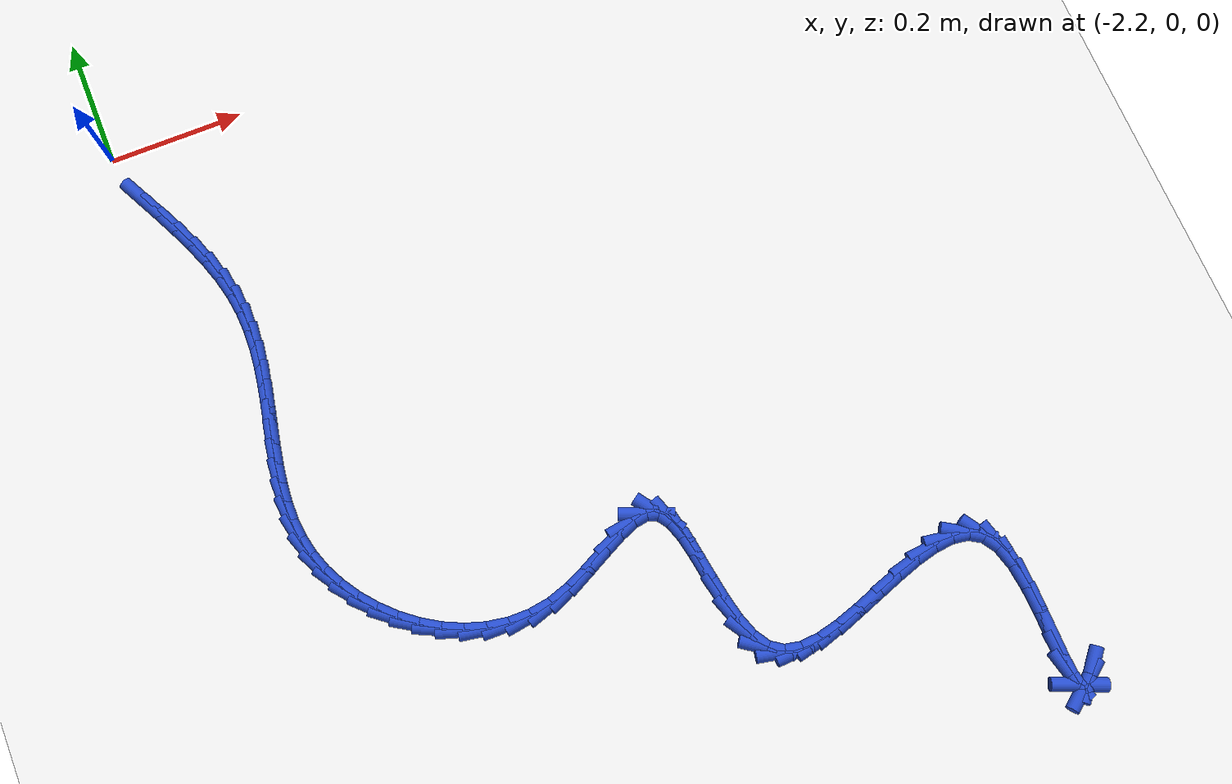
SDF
<sdf version="1.6">
 <world name="default">
  <model name="ground_plane">
   <static>1</static>
   <link name="link">
    <collision name="collision">
     <geometry><plane><normal>0 0 1</normal><size>100 100</size></plane></geometry>
     <surface><friction><ode><mu>100</mu><mu2>50</mu2></ode></friction></surface>
    </collision>
    <visual name="visual">
     <cast_shadows>0</cast_shadows>
     <geometry><plane><normal>0 0 1</normal><size>100 100</size></plane></geometry>
     <material>
      <script><uri>file://media/materials/scripts/gazebo.material</uri><name>Gazebo/WhiteGlow</name></script>
     </material>
    </visual>
   </link>
  </model>
  <model name="line">
   <link name="link_138">
    <pose>-2.1750093930270067 -0.08024967819021081 0.01 0 1.57 -1.1079910578555419</pose>
    <collision name="collision">
     <geometry><cylinder><radius>0.01</radius><length>0.08</length></cylinder></geometry>
    </collision>
    <visual name="visual">
     <material>
      <script><name>Gazebo/Blue</name><uri>file://media/materials/scripts/gazebo.material</uri></script>
     </material>
     <geometry><cylinder><radius>0.01</radius><length>0.08</length></cylinder></geometry>
    </visual>
   </link>
   <link name="link_139">
    <pose>-2.159582826003077 -0.11116789397244181 0.01 0 1.57 -1.1234587748258882</pose>
    <collision name="collision">
     <geometry><cylinder><radius>0.01</radius><length>0.08</length></cylinder></geometry>
    </collision>
    <visual name="visual">
     <material>
      <script><name>Gazebo/Blue</name><uri>file://media/materials/scripts/gazebo.material</uri></script>
     </material>
     <geometry><cylinder><radius>0.01</radius><length>0.08</length></cylinder></geometry>
    </visual>
   </link>
   <link name="link_140">
    <pose>-2.1446007600005483 -0.14239513241327098 0.01 0 1.57 -1.1523136285006175</pose>
    <collision name="collision">
     <geometry><cylinder><radius>0.01</radius><length>0.08</length></cylinder></geometry>
    </collision>
    <visual name="visual">
     <material>
      <script><name>Gazebo/Blue</name><uri>file://media/materials/scripts/gazebo.material</uri></script>
     </material>
     <geometry><cylinder><radius>0.01</radius><length>0.08</length></cylinder></geometry>
    </visual>
   </link>
   <link name="link_141">
    <pose>-2.130638521712843 -0.17378831137011216 0.01 0 1.57 -1.1957716141184123</pose>
    <collision name="collision">
     <geometry><cylinder><radius>0.01</radius><length>0.08</length></cylinder></geometry>
    </collision>
    <visual name="visual">
     <material>
      <script><name>Gazebo/Blue</name><uri>file://media/materials/scripts/gazebo.material</uri></script>
     </material>
     <geometry><cylinder><radius>0.01</radius><length>0.08</length></cylinder></geometry>
    </visual>
   </link>
   <link name="link_142">
    <pose>-2.118271437833383 -0.20520434870038068 0.01 0 1.57 -1.2558286987422518</pose>
    <collision name="collision">
     <geometry><cylinder><radius>0.01</radius><length>0.08</length></cylinder></geometry>
    </collision>
    <visual name="visual">
     <material>
      <script><name>Gazebo/Blue</name><uri>file://media/materials/scripts/gazebo.material</uri></script>
     </material>
     <geometry><cylinder><radius>0.01</radius><length>0.08</length></cylinder></geometry>
    </visual>
   </link>
   <link name="link_143">
    <pose>-2.1080748350555902 -0.2365001622614914 0.01 0 1.57 -1.3351601491467688</pose>
    <collision name="collision">
     <geometry><cylinder><radius>0.01</radius><length>0.08</length></cylinder></geometry>
    </collision>
    <visual name="visual">
     <material>
      <script><name>Gazebo/Blue</name><uri>file://media/materials/scripts/gazebo.material</uri></script>
     </material>
     <geometry><cylinder><radius>0.01</radius><length>0.08</length></cylinder></geometry>
    </visual>
   </link>
   <link name="link_144">
    <pose>-2.100624040072885 -0.267532669910859 0.01 0 1.57 -1.4334561802345067</pose>
    <collision name="collision">
     <geometry><cylinder><radius>0.01</radius><length>0.08</length></cylinder></geometry>
    </collision>
    <visual name="visual">
     <material>
      <script><name>Gazebo/Blue</name><uri>file://media/materials/scripts/gazebo.material</uri></script>
     </material>
     <geometry><cylinder><radius>0.01</radius><length>0.08</length></cylinder></geometry>
    </visual>
   </link>
   <link name="link_145">
    <pose>-2.0963889884723024 -0.29817476936111775 0.01 0 1.57 -1.5294777905653234</pose>
    <collision name="collision">
     <geometry><cylinder><radius>0.01</radius><length>0.08</length></cylinder></geometry>
    </collision>
    <visual name="visual">
     <material>
      <script><name>Gazebo/Blue</name><uri>file://media/materials/scripts/gazebo.material</uri></script>
     </material>
     <geometry><cylinder><radius>0.01</radius><length>0.08</length></cylinder></geometry>
    </visual>
   </link>
   <link name="link_146">
    <pose>-2.0951391851154537 -0.32840556065987525 0.01 0 1.57 1.5299606550445466</pose>
    <collision name="collision">
     <geometry><cylinder><radius>0.01</radius><length>0.08</length></cylinder></geometry>
    </collision>
    <visual name="visual">
     <material>
      <script><name>Gazebo/Blue</name><uri>file://media/materials/scripts/gazebo.material</uri></script>
     </material>
     <geometry><cylinder><radius>0.01</radius><length>0.08</length></cylinder></geometry>
    </visual>
   </link>
   <link name="link_147">
    <pose>-2.0963584768005474 -0.35824745656538065 0.01 0 1.57 1.4636146265108017</pose>
    <collision name="collision">
     <geometry><cylinder><radius>0.01</radius><length>0.08</length></cylinder></geometry>
    </collision>
    <visual name="visual">
     <material>
      <script><name>Gazebo/Blue</name><uri>file://media/materials/scripts/gazebo.material</uri></script>
     </material>
     <geometry><cylinder><radius>0.01</radius><length>0.08</length></cylinder></geometry>
    </visual>
   </link>
   <link name="link_148">
    <pose>-2.099529868926028 -0.3877229974125559 0.01 0 1.57 1.4139683297560868</pose>
    <collision name="collision">
     <geometry><cylinder><radius>0.01</radius><length>0.08</length></cylinder></geometry>
    </collision>
    <visual name="visual">
     <material>
      <script><name>Gazebo/Blue</name><uri>file://media/materials/scripts/gazebo.material</uri></script>
     </material>
     <geometry><cylinder><radius>0.01</radius><length>0.08</length></cylinder></geometry>
    </visual>
   </link>
   <link name="link_149">
    <pose>-2.1041363668903426 -0.41685472353632236 0.01 0 1.57 1.3813390317461878</pose>
    <collision name="collision">
     <geometry><cylinder><radius>0.01</radius><length>0.08</length></cylinder></geometry>
    </collision>
    <visual name="visual">
     <material>
      <script><name>Gazebo/Blue</name><uri>file://media/materials/scripts/gazebo.material</uri></script>
     </material>
     <geometry><cylinder><radius>0.01</radius><length>0.08</length></cylinder></geometry>
    </visual>
   </link>
   <link name="link_150">
    <pose>-2.109660976091934 -0.4456651752716009 0.01 0 1.57 1.3658788246735152</pose>
    <collision name="collision">
     <geometry><cylinder><radius>0.01</radius><length>0.08</length></cylinder></geometry>
    </collision>
    <visual name="visual">
     <material>
      <script><name>Gazebo/Blue</name><uri>file://media/materials/scripts/gazebo.material</uri></script>
     </material>
     <geometry><cylinder><radius>0.01</radius><length>0.08</length></cylinder></geometry>
    </visual>
   </link>
   <link name="link_151">
    <pose>-2.11558670192925 -0.47417689295331267 0.01 0 1.57 1.367864872662749</pose>
    <collision name="collision">
     <geometry><cylinder><radius>0.01</radius><length>0.08</length></cylinder></geometry>
    </collision>
    <visual name="visual">
     <material>
      <script><name>Gazebo/Blue</name><uri>file://media/materials/scripts/gazebo.material</uri></script>
     </material>
     <geometry><cylinder><radius>0.01</radius><length>0.08</length></cylinder></geometry>
    </visual>
   </link>
   <link name="link_152">
    <pose>-2.1213965498007346 -0.5024124169163791 0.01 0 1.57 1.3878531835266719</pose>
    <collision name="collision">
     <geometry><cylinder><radius>0.01</radius><length>0.08</length></cylinder></geometry>
    </collision>
    <visual name="visual">
     <material>
      <script><name>Gazebo/Blue</name><uri>file://media/materials/scripts/gazebo.material</uri></script>
     </material>
     <geometry><cylinder><radius>0.01</radius><length>0.08</length></cylinder></geometry>
    </visual>
   </link>
   <link name="link_153">
    <pose>-2.126573525104833 -0.5303942874957208 0.01 0 1.57 1.4266852649250839</pose>
    <collision name="collision">
     <geometry><cylinder><radius>0.01</radius><length>0.08</length></cylinder></geometry>
    </collision>
    <visual name="visual">
     <material>
      <script><name>Gazebo/Blue</name><uri>file://media/materials/scripts/gazebo.material</uri></script>
     </material>
     <geometry><cylinder><radius>0.01</radius><length>0.08</length></cylinder></geometry>
    </visual>
   </link>
   <link name="link_154">
    <pose>-2.1306006332399914 -0.5581450450262595 0.01 0 1.57 1.4853094992653528</pose>
    <collision name="collision">
     <geometry><cylinder><radius>0.01</radius><length>0.08</length></cylinder></geometry>
    </collision>
    <visual name="visual">
     <material>
      <script><name>Gazebo/Blue</name><uri>file://media/materials/scripts/gazebo.material</uri></script>
     </material>
     <geometry><cylinder><radius>0.01</radius><length>0.08</length></cylinder></geometry>
    </visual>
   </link>
   <link name="link_155">
    <pose>-2.1329608796046546 -0.5856872298429165 0.01 0 1.57 1.5643485067451677</pose>
    <collision name="collision">
     <geometry><cylinder><radius>0.01</radius><length>0.08</length></cylinder></geometry>
    </collision>
    <visual name="visual">
     <material>
      <script><name>Gazebo/Blue</name><uri>file://media/materials/scripts/gazebo.material</uri></script>
     </material>
     <geometry><cylinder><radius>0.01</radius><length>0.08</length></cylinder></geometry>
    </visual>
   </link>
   <link name="link_156">
    <pose>-2.1331372695972677 -0.6130433822806118 0.01 0 1.57 -1.4782255439006866</pose>
    <collision name="collision">
     <geometry><cylinder><radius>0.01</radius><length>0.08</length></cylinder></geometry>
    </collision>
    <visual name="visual">
     <material>
      <script><name>Gazebo/Blue</name><uri>file://media/materials/scripts/gazebo.material</uri></script>
     </material>
     <geometry><cylinder><radius>0.01</radius><length>0.08</length></cylinder></geometry>
    </visual>
   </link>
   <link name="link_157">
    <pose>-2.1306128086162763 -0.6402360426742668 0.01 0 1.57 -1.3616295795121587</pose>
    <collision name="collision">
     <geometry><cylinder><radius>0.01</radius><length>0.08</length></cylinder></geometry>
    </collision>
    <visual name="visual">
     <material>
      <script><name>Gazebo/Blue</name><uri>file://media/materials/scripts/gazebo.material</uri></script>
     </material>
     <geometry><cylinder><radius>0.01</radius><length>0.08</length></cylinder></geometry>
    </visual>
   </link>
   <link name="link_158">
    <pose>-2.124870502060126 -0.667287751358803 0.01 0 1.57 -1.2336092354714616</pose>
    <collision name="collision">
     <geometry><cylinder><radius>0.01</radius><length>0.08</length></cylinder></geometry>
    </collision>
    <visual name="visual">
     <material>
      <script><name>Gazebo/Blue</name><uri>file://media/materials/scripts/gazebo.material</uri></script>
     </material>
     <geometry><cylinder><radius>0.01</radius><length>0.08</length></cylinder></geometry>
    </visual>
   </link>
   <link name="link_159">
    <pose>-2.1154377173123096 -0.6941943513518177 0.01 0 1.57 -1.1108855004633407</pose>
    <collision name="collision">
     <geometry><cylinder><radius>0.01</radius><length>0.08</length></cylinder></geometry>
    </collision>
    <visual name="visual">
     <material>
      <script><name>Gazebo/Blue</name><uri>file://media/materials/scripts/gazebo.material</uri></script>
     </material>
     <geometry><cylinder><radius>0.01</radius><length>0.08</length></cylinder></geometry>
    </visual>
   </link>
   <link name="link_160">
    <pose>-2.102329038608992 -0.7206584755517632 0.01 0 1.57 -0.9981245548011611</pose>
    <collision name="collision">
     <geometry><cylinder><radius>0.01</radius><length>0.08</length></cylinder></geometry>
    </collision>
    <visual name="visual">
     <material>
      <script><name>Gazebo/Blue</name><uri>file://media/materials/scripts/gazebo.material</uri></script>
     </material>
     <geometry><cylinder><radius>0.01</radius><length>0.08</length></cylinder></geometry>
    </visual>
   </link>
   <link name="link_161">
    <pose>-2.085860363328247 -0.7462014247423372 0.01 0 1.57 -0.8911242993949146</pose>
    <collision name="collision">
     <geometry><cylinder><radius>0.01</radius><length>0.08</length></cylinder></geometry>
    </collision>
    <visual name="visual">
     <material>
      <script><name>Gazebo/Blue</name><uri>file://media/materials/scripts/gazebo.material</uri></script>
     </material>
     <geometry><cylinder><radius>0.01</radius><length>0.08</length></cylinder></geometry>
    </visual>
   </link>
   <link name="link_162">
    <pose>-2.066352056885059 -0.7703418108149549 0.01 0 1.57 -0.786046995490271</pose>
    <collision name="collision">
     <geometry><cylinder><radius>0.01</radius><length>0.08</length></cylinder></geometry>
    </collision>
    <visual name="visual">
     <material>
      <script><name>Gazebo/Blue</name><uri>file://media/materials/scripts/gazebo.material</uri></script>
     </material>
     <geometry><cylinder><radius>0.01</radius><length>0.08</length></cylinder></geometry>
    </visual>
   </link>
   <link name="link_163">
    <pose>-2.044124484694415 -0.7925982456610321 0.01 0 1.57 -0.6794256771318007</pose>
    <collision name="collision">
     <geometry><cylinder><radius>0.01</radius><length>0.08</length></cylinder></geometry>
    </collision>
    <visual name="visual">
     <material>
      <script><name>Gazebo/Blue</name><uri>file://media/materials/scripts/gazebo.material</uri></script>
     </material>
     <geometry><cylinder><radius>0.01</radius><length>0.08</length></cylinder></geometry>
    </visual>
   </link>
   <link name="link_164">
    <pose>-2.0194980121712973 -0.8124893411719837 0.01 0 1.57 -0.5680679788412566</pose>
    <collision name="collision">
     <geometry><cylinder><radius>0.01</radius><length>0.08</length></cylinder></geometry>
    </collision>
    <visual name="visual">
     <material>
      <script><name>Gazebo/Blue</name><uri>file://media/materials/scripts/gazebo.material</uri></script>
     </material>
     <geometry><cylinder><radius>0.01</radius><length>0.08</length></cylinder></geometry>
    </visual>
   </link>
   <link name="link_165">
    <pose>-1.9927930047306939 -0.8295337092392242 0.01 0 1.57 -0.44905869668295056</pose>
    <collision name="collision">
     <geometry><cylinder><radius>0.01</radius><length>0.08</length></cylinder></geometry>
    </collision>
    <visual name="visual">
     <material>
      <script><name>Gazebo/Blue</name><uri>file://media/materials/scripts/gazebo.material</uri></script>
     </material>
     <geometry><cylinder><radius>0.01</radius><length>0.08</length></cylinder></geometry>
    </visual>
   </link>
   <link name="link_166">
    <pose>-1.9643298277875882 -0.8432499617541691 0.01 0 1.57 -0.3199361298505757</pose>
    <collision name="collision">
     <geometry><cylinder><radius>0.01</radius><length>0.08</length></cylinder></geometry>
    </collision>
    <visual name="visual">
     <material>
      <script><name>Gazebo/Blue</name><uri>file://media/materials/scripts/gazebo.material</uri></script>
     </material>
     <geometry><cylinder><radius>0.01</radius><length>0.08</length></cylinder></geometry>
    </visual>
   </link>
   <link name="link_167">
    <pose>-1.934428846756967 -0.8531567106082338 0.01 0 1.57 -0.1791089315021569</pose>
    <collision name="collision">
     <geometry><cylinder><radius>0.01</radius><length>0.08</length></cylinder></geometry>
    </collision>
    <visual name="visual">
     <material>
      <script><name>Gazebo/Blue</name><uri>file://media/materials/scripts/gazebo.material</uri></script>
     </material>
     <geometry><cylinder><radius>0.01</radius><length>0.08</length></cylinder></geometry>
    </visual>
   </link>
   <link name="link_168">
    <pose>-1.9034104270538146 -0.8587725676928339 0.01 0 1.57 -0.026508456270802984</pose>
    <collision name="collision">
     <geometry><cylinder><radius>0.01</radius><length>0.08</length></cylinder></geometry>
    </collision>
    <visual name="visual">
     <material>
      <script><name>Gazebo/Blue</name><uri>file://media/materials/scripts/gazebo.material</uri></script>
     </material>
     <geometry><cylinder><radius>0.01</radius><length>0.08</length></cylinder></geometry>
    </visual>
   </link>
   <link name="link_169">
    <pose>-1.8715949340931157 -0.8596161448993839 0.01 0 1.57 0.1357286301800237</pose>
    <collision name="collision">
     <geometry><cylinder><radius>0.01</radius><length>0.08</length></cylinder></geometry>
    </collision>
    <visual name="visual">
     <material>
      <script><name>Gazebo/Blue</name><uri>file://media/materials/scripts/gazebo.material</uri></script>
     </material>
     <geometry><cylinder><radius>0.01</radius><length>0.08</length></cylinder></geometry>
    </visual>
   </link>
   <link name="link_170">
    <pose>-1.8393027332898562 -0.8552060541192991 0.01 0 1.57 0.2985281114401136</pose>
    <collision name="collision">
     <geometry><cylinder><radius>0.01</radius><length>0.08</length></cylinder></geometry>
    </collision>
    <visual name="visual">
     <material>
      <script><name>Gazebo/Blue</name><uri>file://media/materials/scripts/gazebo.material</uri></script>
     </material>
     <geometry><cylinder><radius>0.01</radius><length>0.08</length></cylinder></geometry>
    </visual>
   </link>
   <link name="link_171">
    <pose>-1.806882128904292 -0.8452294479364982 0.01 0 1.57 0.4135257953691162</pose>
    <collision name="collision">
     <geometry><cylinder><radius>0.01</radius><length>0.08</length></cylinder></geometry>
    </collision>
    <visual name="visual">
     <material>
      <script><name>Gazebo/Blue</name><uri>file://media/materials/scripts/gazebo.material</uri></script>
     </material>
     <geometry><cylinder><radius>0.01</radius><length>0.08</length></cylinder></geometry>
    </visual>
   </link>
   <link name="link_172">
    <pose>-1.7749898729280744 -0.8312341855512779 0.01 0 1.57 0.46503576359918347</pose>
    <collision name="collision">
     <geometry><cylinder><radius>0.01</radius><length>0.08</length></cylinder></geometry>
    </collision>
    <visual name="visual">
     <material>
      <script><name>Gazebo/Blue</name><uri>file://media/materials/scripts/gazebo.material</uri></script>
     </material>
     <geometry><cylinder><radius>0.01</radius><length>0.08</length></cylinder></geometry>
    </visual>
   </link>
   <link name="link_173">
    <pose>-1.7444742215408833 -0.8159233724940765 0.01 0 1.57 0.45689355055809666</pose>
    <collision name="collision">
     <geometry><cylinder><radius>0.01</radius><length>0.08</length></cylinder></geometry>
    </collision>
    <visual name="visual">
     <material>
      <script><name>Gazebo/Blue</name><uri>file://media/materials/scripts/gazebo.material</uri></script>
     </material>
     <geometry><cylinder><radius>0.01</radius><length>0.08</length></cylinder></geometry>
    </visual>
   </link>
   <link name="link_174">
    <pose>-1.716186302240054 -0.8020174354788213 0.01 0 1.57 0.3701023582145205</pose>
    <collision name="collision">
     <geometry><cylinder><radius>0.01</radius><length>0.08</length></cylinder></geometry>
    </collision>
    <visual name="visual">
     <material>
      <script><name>Gazebo/Blue</name><uri>file://media/materials/scripts/gazebo.material</uri></script>
     </material>
     <geometry><cylinder><radius>0.01</radius><length>0.08</length></cylinder></geometry>
    </visual>
   </link>
   <link name="link_175">
    <pose>-1.6909772425229184 -0.7922368012194372 0.01 0 1.57 0.1370597311874913</pose>
    <collision name="collision">
     <geometry><cylinder><radius>0.01</radius><length>0.08</length></cylinder></geometry>
    </collision>
    <visual name="visual">
     <material>
      <script><name>Gazebo/Blue</name><uri>file://media/materials/scripts/gazebo.material</uri></script>
     </material>
     <geometry><cylinder><radius>0.01</radius><length>0.08</length></cylinder></geometry>
    </visual>
   </link>
   <link name="link_176">
    <pose>-1.6696981698868092 -0.7893018964298499 0.01 0 1.57 -0.38020507286227156</pose>
    <collision name="collision">
     <geometry><cylinder><radius>0.01</radius><length>0.08</length></cylinder></geometry>
    </collision>
    <visual name="visual">
     <material>
      <script><name>Gazebo/Blue</name><uri>file://media/materials/scripts/gazebo.material</uri></script>
     </material>
     <geometry><cylinder><radius>0.01</radius><length>0.08</length></cylinder></geometry>
    </visual>
   </link>
   <link name="link_177">
    <pose>-1.6531866775792983 -0.7959007230680674 0.01 0 1.57 -0.9649908614694915</pose>
    <collision name="collision">
     <geometry><cylinder><radius>0.01</radius><length>0.08</length></cylinder></geometry>
    </collision>
    <visual name="visual">
     <material>
      <script><name>Gazebo/Blue</name><uri>file://media/materials/scripts/gazebo.material</uri></script>
     </material>
     <geometry><cylinder><radius>0.01</radius><length>0.08</length></cylinder></geometry>
    </visual>
   </link>
   <link name="link_178">
    <pose>-1.6414792524782296 -0.812802027945893 0.01 0 1.57 -1.2575333440230128</pose>
    <collision name="collision">
     <geometry><cylinder><radius>0.01</radius><length>0.08</length></cylinder></geometry>
    </collision>
    <visual name="visual">
     <material>
      <script><name>Gazebo/Blue</name><uri>file://media/materials/scripts/gazebo.material</uri></script>
     </material>
     <geometry><cylinder><radius>0.01</radius><length>0.08</length></cylinder></geometry>
    </visual>
   </link>
   <link name="link_179">
    <pose>-1.6333769214585476 -0.8378146975393607 0.01 0 1.57 -1.3838981130147632</pose>
    <collision name="collision">
     <geometry><cylinder><radius>0.01</radius><length>0.08</length></cylinder></geometry>
    </collision>
    <visual name="visual">
     <material>
      <script><name>Gazebo/Blue</name><uri>file://media/materials/scripts/gazebo.material</uri></script>
     </material>
     <geometry><cylinder><radius>0.01</radius><length>0.08</length></cylinder></geometry>
    </visual>
   </link>
   <link name="link_180">
    <pose>-1.6275751629697326 -0.8684947500832795 0.01 0 1.57 -1.42998753548947</pose>
    <collision name="collision">
     <geometry><cylinder><radius>0.01</radius><length>0.08</length></cylinder></geometry>
    </collision>
    <visual name="visual">
     <material>
      <script><name>Gazebo/Blue</name><uri>file://media/materials/scripts/gazebo.material</uri></script>
     </material>
     <geometry><cylinder><radius>0.01</radius><length>0.08</length></cylinder></geometry>
    </visual>
   </link>
   <link name="link_181">
    <pose>-1.622769455461262 -0.9023982038124603 0.01 0 1.57 -1.4243958774017484</pose>
    <collision name="collision">
     <geometry><cylinder><radius>0.01</radius><length>0.08</length></cylinder></geometry>
    </collision>
    <visual name="visual">
     <material>
      <script><name>Gazebo/Blue</name><uri>file://media/materials/scripts/gazebo.material</uri></script>
     </material>
     <geometry><cylinder><radius>0.01</radius><length>0.08</length></cylinder></geometry>
    </visual>
   </link>
   <link name="link_182">
    <pose>-1.617655277382617 -0.9370810769617102 0.01 0 1.57 -1.3698066444982133</pose>
    <collision name="collision">
     <geometry><cylinder><radius>0.01</radius><length>0.08</length></cylinder></geometry>
    </collision>
    <visual name="visual">
     <material>
      <script><name>Gazebo/Blue</name><uri>file://media/materials/scripts/gazebo.material</uri></script>
     </material>
     <geometry><cylinder><radius>0.01</radius><length>0.08</length></cylinder></geometry>
    </visual>
   </link>
   <link name="link_183">
    <pose>-1.6109281071832766 -0.9700993877658398 0.01 0 1.57 -1.2487937861636051</pose>
    <collision name="collision">
     <geometry><cylinder><radius>0.01</radius><length>0.08</length></cylinder></geometry>
    </collision>
    <visual name="visual">
     <material>
      <script><name>Gazebo/Blue</name><uri>file://media/materials/scripts/gazebo.material</uri></script>
     </material>
     <geometry><cylinder><radius>0.01</radius><length>0.08</length></cylinder></geometry>
    </visual>
   </link>
   <link name="link_184">
    <pose>-1.6012834233127209 -0.9990091544596588 0.01 0 1.57 -1.0156316493241797</pose>
    <collision name="collision">
     <geometry><cylinder><radius>0.01</radius><length>0.08</length></cylinder></geometry>
    </collision>
    <visual name="visual">
     <material>
      <script><name>Gazebo/Blue</name><uri>file://media/materials/scripts/gazebo.material</uri></script>
     </material>
     <geometry><cylinder><radius>0.01</radius><length>0.08</length></cylinder></geometry>
    </visual>
   </link>
   <link name="link_185">
    <pose>-1.5874167042204295 -1.0213663952779768 0.01 0 1.57 -0.6176026146891805</pose>
    <collision name="collision">
     <geometry><cylinder><radius>0.01</radius><length>0.08</length></cylinder></geometry>
    </collision>
    <visual name="visual">
     <material>
      <script><name>Gazebo/Blue</name><uri>file://media/materials/scripts/gazebo.material</uri></script>
     </material>
     <geometry><cylinder><radius>0.01</radius><length>0.08</length></cylinder></geometry>
    </visual>
   </link>
   <link name="link_186">
    <pose>-1.5681910040559055 -1.0350223319006135 0.01 0 1.57 -0.21541268291412694</pose>
    <collision name="collision">
     <geometry><cylinder><radius>0.01</radius><length>0.08</length></cylinder></geometry>
    </collision>
    <visual name="visual">
     <material>
      <script><name>Gazebo/Blue</name><uri>file://media/materials/scripts/gazebo.material</uri></script>
     </material>
     <geometry><cylinder><radius>0.01</radius><length>0.08</length></cylinder></geometry>
    </visual>
   </link>
   <link name="link_187">
    <pose>-1.5438944452011747 -1.0403386039949207 0.01 0 1.57 0.04910531405129147</pose>
    <collision name="collision">
     <geometry><cylinder><radius>0.01</radius><length>0.08</length></cylinder></geometry>
    </collision>
    <visual name="visual">
     <material>
      <script><name>Gazebo/Blue</name><uri>file://media/materials/scripts/gazebo.material</uri></script>
     </material>
     <geometry><cylinder><radius>0.01</radius><length>0.08</length></cylinder></geometry>
    </visual>
   </link>
   <link name="link_188">
    <pose>-1.515534962746592 -1.0389448822806684 0.01 0 1.57 0.2029759758758777</pose>
    <collision name="collision">
     <geometry><cylinder><radius>0.01</radius><length>0.08</length></cylinder></geometry>
    </collision>
    <visual name="visual">
     <material>
      <script><name>Gazebo/Blue</name><uri>file://media/materials/scripts/gazebo.material</uri></script>
     </material>
     <geometry><cylinder><radius>0.01</radius><length>0.08</length></cylinder></geometry>
    </visual>
   </link>
   <link name="link_189">
    <pose>-1.484126036801982 -1.0324806056531395 0.01 0 1.57 0.287664973774285</pose>
    <collision name="collision">
     <geometry><cylinder><radius>0.01</radius><length>0.08</length></cylinder></geometry>
    </collision>
    <visual name="visual">
     <material>
      <script><name>Gazebo/Blue</name><uri>file://media/materials/scripts/gazebo.material</uri></script>
     </material>
     <geometry><cylinder><radius>0.01</radius><length>0.08</length></cylinder></geometry>
    </visual>
   </link>
   <link name="link_190">
    <pose>-1.450681147477168 -1.0225852130076167 0.01 0 1.57 0.32691030443232466</pose>
    <collision name="collision">
     <geometry><cylinder><radius>0.01</radius><length>0.08</length></cylinder></geometry>
    </collision>
    <visual name="visual">
     <material>
      <script><name>Gazebo/Blue</name><uri>file://media/materials/scripts/gazebo.material</uri></script>
     </material>
     <geometry><cylinder><radius>0.01</radius><length>0.08</length></cylinder></geometry>
    </visual>
   </link>
   <link name="link_191">
    <pose>-1.4162137748819754 -1.010898143239384 0.01 0 1.57 0.33078615797678007</pose>
    <collision name="collision">
     <geometry><cylinder><radius>0.01</radius><length>0.08</length></cylinder></geometry>
    </collision>
    <visual name="visual">
     <material>
      <script><name>Gazebo/Blue</name><uri>file://media/materials/scripts/gazebo.material</uri></script>
     </material>
     <geometry><cylinder><radius>0.01</radius><length>0.08</length></cylinder></geometry>
    </visual>
   </link>
   <link name="link_192">
    <pose>-1.3817373991262287 -0.9990588352437244 0.01 0 1.57 0.2999464387136433</pose>
    <collision name="collision">
     <geometry><cylinder><radius>0.01</radius><length>0.08</length></cylinder></geometry>
    </collision>
    <visual name="visual">
     <material>
      <script><name>Gazebo/Blue</name><uri>file://media/materials/scripts/gazebo.material</uri></script>
     </material>
     <geometry><cylinder><radius>0.01</radius><length>0.08</length></cylinder></geometry>
    </visual>
   </link>
   <link name="link_193">
    <pose>-1.348265500319751 -0.9887067279159207 0.01 0 1.57 0.22579846133661058</pose>
    <collision name="collision">
     <geometry><cylinder><radius>0.01</radius><length>0.08</length></cylinder></geometry>
    </collision>
    <visual name="visual">
     <material>
      <script><name>Gazebo/Blue</name><uri>file://media/materials/scripts/gazebo.material</uri></script>
     </material>
     <geometry><cylinder><radius>0.01</radius><length>0.08</length></cylinder></geometry>
    </visual>
   </link>
   <link name="link_194">
    <pose>-1.3168115585723665 -0.9814812601512564 0.01 0 1.57 0.08631465255192484</pose>
    <collision name="collision">
     <geometry><cylinder><radius>0.01</radius><length>0.08</length></cylinder></geometry>
    </collision>
    <visual name="visual">
     <material>
      <script><name>Gazebo/Blue</name><uri>file://media/materials/scripts/gazebo.material</uri></script>
     </material>
     <geometry><cylinder><radius>0.01</radius><length>0.08</length></cylinder></geometry>
    </visual>
   </link>
   <link name="link_195">
    <pose>-1.2883890539938998 -0.9790218708450142 0.01 0 1.57 -0.16048316763946827</pose>
    <collision name="collision">
     <geometry><cylinder><radius>0.01</radius><length>0.08</length></cylinder></geometry>
    </collision>
    <visual name="visual">
     <material>
      <script><name>Gazebo/Blue</name><uri>file://media/materials/scripts/gazebo.material</uri></script>
     </material>
     <geometry><cylinder><radius>0.01</radius><length>0.08</length></cylinder></geometry>
    </visual>
   </link>
   <link name="link_196">
    <pose>-1.264011466694175 -0.9829679988924781 0.01 0 1.57 -0.5554886150180064</pose>
    <collision name="collision">
     <geometry><cylinder><radius>0.01</radius><length>0.08</length></cylinder></geometry>
    </collision>
    <visual name="visual">
     <material>
      <script><name>Gazebo/Blue</name><uri>file://media/materials/scripts/gazebo.material</uri></script>
     </material>
     <geometry><cylinder><radius>0.01</radius><length>0.08</length></cylinder></geometry>
    </visual>
   </link>
   <link name="link_197">
    <pose>-1.2446922767830157 -0.9949590831889301 0.01 0 1.57 -1.012417948730086</pose>
    <collision name="collision">
     <geometry><cylinder><radius>0.01</radius><length>0.08</length></cylinder></geometry>
    </collision>
    <visual name="visual">
     <material>
      <script><name>Gazebo/Blue</name><uri>file://media/materials/scripts/gazebo.material</uri></script>
     </material>
     <geometry><cylinder><radius>0.01</radius><length>0.08</length></cylinder></geometry>
    </visual>
   </link>
   <link name="link_198">
    <pose>-1.2313127635720718 -1.016376831526307 0.01 0 1.57 -1.307674815069582</pose>
    <collision name="collision">
     <geometry><cylinder><radius>0.01</radius><length>0.08</length></cylinder></geometry>
    </collision>
    <visual name="visual">
     <material>
      <script><name>Gazebo/Blue</name><uri>file://media/materials/scripts/gazebo.material</uri></script>
     </material>
     <geometry><cylinder><radius>0.01</radius><length>0.08</length></cylinder></geometry>
    </visual>
   </link>
   <link name="link_199">
    <pose>-1.2233628028925583 -1.045890351173965 0.01 0 1.57 -1.4597630615417907</pose>
    <collision name="collision">
     <geometry><cylinder><radius>0.01</radius><length>0.08</length></cylinder></geometry>
    </collision>
    <visual name="visual">
     <material>
      <script><name>Gazebo/Blue</name><uri>file://media/materials/scripts/gazebo.material</uri></script>
     </material>
     <geometry><cylinder><radius>0.01</radius><length>0.08</length></cylinder></geometry>
    </visual>
   </link>
   <link name="link_200">
    <pose>-1.2194991450260955 -1.0805445355531678 0.01 0 1.57 -1.540063863090857</pose>
    <collision name="collision">
     <geometry><cylinder><radius>0.01</radius><length>0.08</length></cylinder></geometry>
    </collision>
    <visual name="visual">
     <material>
      <script><name>Gazebo/Blue</name><uri>file://media/materials/scripts/gazebo.material</uri></script>
     </material>
     <geometry><cylinder><radius>0.01</radius><length>0.08</length></cylinder></geometry>
    </visual>
   </link>
   <link name="link_201">
    <pose>-1.218367286851835 -1.1173623390963487 0.01 0 1.57 1.5639795279820485</pose>
    <collision name="collision">
     <geometry><cylinder><radius>0.01</radius><length>0.08</length></cylinder></geometry>
    </collision>
    <visual name="visual">
     <material>
      <script><name>Gazebo/Blue</name><uri>file://media/materials/scripts/gazebo.material</uri></script>
     </material>
     <geometry><cylinder><radius>0.01</radius><length>0.08</length></cylinder></geometry>
    </visual>
   </link>
   <link name="link_202">
    <pose>-1.2186127252489274 -1.1533667162359398 0.01 0 1.57 1.5624699333497993</pose>
    <collision name="collision">
     <geometry><cylinder><radius>0.01</radius><length>0.08</length></cylinder></geometry>
    </collision>
    <visual name="visual">
     <material>
      <script><name>Gazebo/Blue</name><uri>file://media/materials/scripts/gazebo.material</uri></script>
     </material>
     <geometry><cylinder><radius>0.01</radius><length>0.08</length></cylinder></geometry>
    </visual>
   </link>
   <link name="link_203">
    <pose>-1.2188809570965247 -1.1855806214043738 0.01 0 1.57 -1.5290277538400328</pose>
    <collision name="collision">
     <geometry><cylinder><radius>0.01</radius><length>0.08</length></cylinder></geometry>
    </collision>
    <visual name="visual">
     <material>
      <script><name>Gazebo/Blue</name><uri>file://media/materials/scripts/gazebo.material</uri></script>
     </material>
     <geometry><cylinder><radius>0.01</radius><length>0.08</length></cylinder></geometry>
    </visual>
   </link>
   <link name="link_204">
    <pose>-1.2178174792737777 -1.2110270090340831 0.01 0 1.57 -1.3363805802454898</pose>
    <collision name="collision">
     <geometry><cylinder><radius>0.01</radius><length>0.08</length></cylinder></geometry>
    </collision>
    <visual name="visual">
     <material>
      <script><name>Gazebo/Blue</name><uri>file://media/materials/scripts/gazebo.material</uri></script>
     </material>
     <geometry><cylinder><radius>0.01</radius><length>0.08</length></cylinder></geometry>
    </visual>
   </link>
   <link name="link_205">
    <pose>-1.2140677886598379 -1.2267288335575006 0.01 0 1.57 -0.3909311566836747</pose>
    <collision name="collision">
     <geometry><cylinder><radius>0.01</radius><length>0.08</length></cylinder></geometry>
    </collision>
    <visual name="visual">
     <material>
      <script><name>Gazebo/Blue</name><uri>file://media/materials/scripts/gazebo.material</uri></script>
     </material>
     <geometry><cylinder><radius>0.01</radius><length>0.08</length></cylinder></geometry>
    </visual>
   </link>
   <link name="link_206">
    <pose>-1.2063400349640465 -1.2299137795080424 0.01 0 1.57 0.6452554169650105</pose>
    <collision name="collision">
     <geometry><cylinder><radius>0.01</radius><length>0.08</length></cylinder></geometry>
    </collision>
    <visual name="visual">
     <material>
      <script><name>Gazebo/Blue</name><uri>file://media/materials/scripts/gazebo.material</uri></script>
     </material>
     <geometry><cylinder><radius>0.01</radius><length>0.08</length></cylinder></geometry>
    </visual>
   </link>
   <link name="link_207">
    <pose>-1.1942649811022545 -1.220824346462033 0.01 0 1.57 0.8636081199572164</pose>
    <collision name="collision">
     <geometry><cylinder><radius>0.01</radius><length>0.08</length></cylinder></geometry>
    </collision>
    <visual name="visual">
     <material>
      <script><name>Gazebo/Blue</name><uri>file://media/materials/scripts/gazebo.material</uri></script>
     </material>
     <geometry><cylinder><radius>0.01</radius><length>0.08</length></cylinder></geometry>
    </visual>
   </link>
  </model>
 </world>
</sdf>
